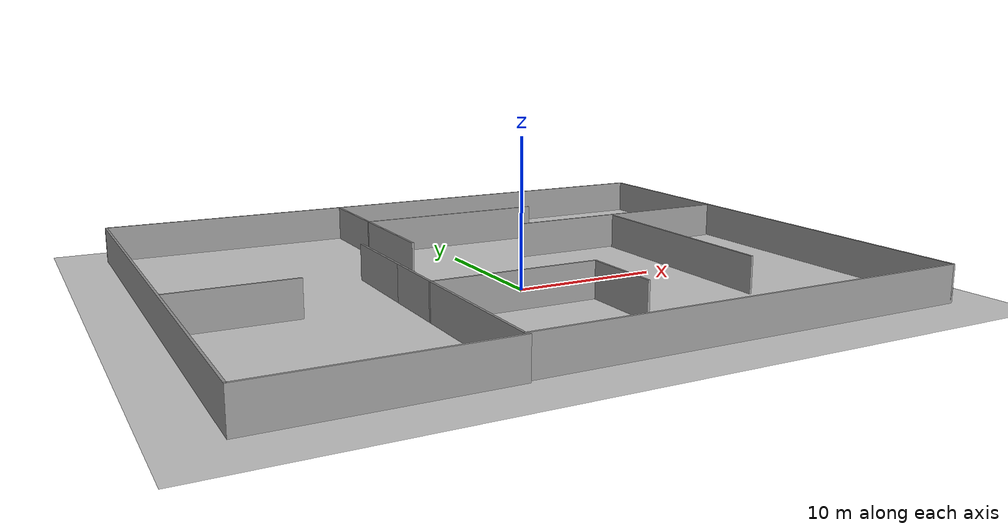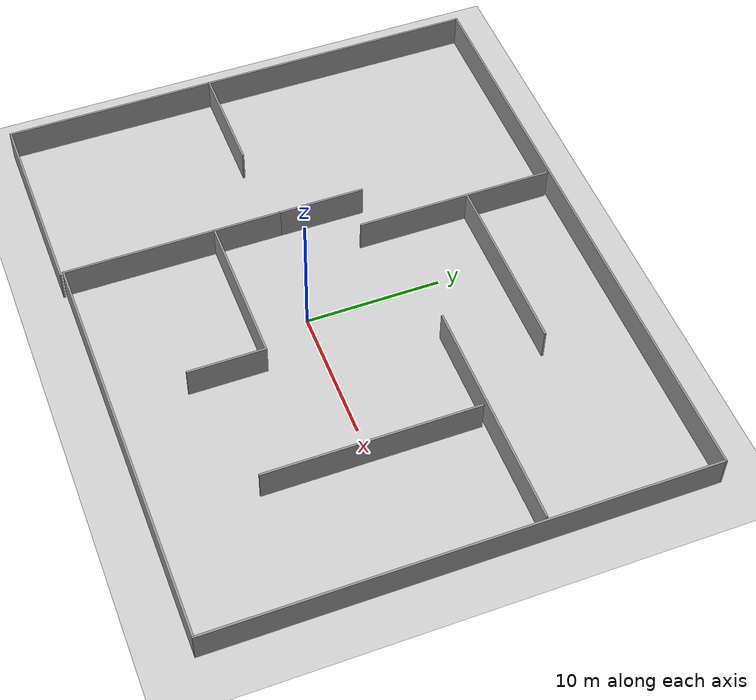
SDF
<sdf version="1.7">
 <world name="default">
  <light name="sun" type="directional">
   <pose>0 0 10 0 -0 0</pose>
   <diffuse>0.8 0.8 0.8 1</diffuse>
   <specular>0.2 0.2 0.2 1</specular>
   <attenuation>
    <range>1000</range>
    <constant>0.9</constant>
    <linear>0.01</linear>
    <quadratic>0.001</quadratic>
   </attenuation>
   <direction>-0.5 0.1 -0.9</direction>
   <spot><inner_angle>0</inner_angle><outer_angle>0</outer_angle><falloff>0</falloff></spot>
  </light>
  <model name="ground_plane">
   <static>1</static>
   <link name="link">
    <collision name="collision">
     <geometry><plane><normal>0 0 1</normal><size>100 100</size></plane></geometry>
     <surface>
      <contact><collide_bitmask>65535</collide_bitmask></contact>
      <friction><ode><mu>100</mu><mu2>50</mu2></ode></friction>
     </surface>
    </collision>
    <visual name="visual">
     <cast_shadows>0</cast_shadows>
     <geometry><plane><normal>0 0 1</normal><size>100 100</size></plane></geometry>
     <material>
      <script><uri>file://media/materials/scripts/gazebo.material</uri><name>Gazebo/Grey</name></script>
     </material>
    </visual>
   </link>
  </model>
  <gravity>0 0 -9.8</gravity>
  <magnetic_field>6e-06 2.3e-05 -4.2e-05</magnetic_field>
  <atmosphere type="adiabatic"/>
  <physics name="default_physics" default="0" type="ode">
   <max_step_size>0.001</max_step_size>
   <real_time_factor>1</real_time_factor>
   <real_time_update_rate>1000</real_time_update_rate>
  </physics>
  <scene><ambient>0.4 0.4 0.4 1</ambient><background>0.7 0.7 0.7 1</background><shadows>1</shadows></scene>
  <spherical_coordinates>
   <surface_model>EARTH_WGS84</surface_model>
   <latitude_deg>0</latitude_deg>
   <longitude_deg>0</longitude_deg>
   <elevation>0</elevation>
   <heading_deg>0</heading_deg>
  </spherical_coordinates>
  <model name="125">
   <pose>-0.314976 2.71608 0 0 -0 0</pose>
   <link name="Wall_0">
    <collision name="Wall_0_Collision">
     <geometry><box><size>6.5 0.15 2.5</size></box></geometry>
     <pose>0 0 1.25 0 -0 0</pose>
    </collision>
    <visual name="Wall_0_Visual">
     <pose>0 0 1.25 0 -0 0</pose>
     <geometry><box><size>6.5 0.15 2.5</size></box></geometry>
     <material>
      <script><uri>file://media/materials/scripts/gazebo.material</uri><name>Gazebo/Grey</name></script>
      <ambient>1 1 1 1</ambient>
     </material>
     <meta><layer>0</layer></meta>
    </visual>
    <pose>-7.925 1.35 0 0 -0 -1.5708</pose>
   </link>
   <link name="Wall_1">
    <collision name="Wall_1_Collision">
     <geometry><box><size>16.25 0.15 2.5</size></box></geometry>
     <pose>0 0 1.25 0 -0 0</pose>
    </collision>
    <visual name="Wall_1_Visual">
     <pose>0 0 1.25 0 -0 0</pose>
     <geometry><box><size>16.25 0.15 2.5</size></box></geometry>
     <material>
      <script><uri>file://media/materials/scripts/gazebo.material</uri><name>Gazebo/Grey</name></script>
      <ambient>1 1 1 1</ambient>
     </material>
     <meta><layer>0</layer></meta>
    </visual>
    <pose>-7.925 -9.875 0 0 -0 -1.5708</pose>
   </link>
   <link name="Wall_10">
    <collision name="Wall_10_Collision">
     <geometry><box><size>11.5 0.15 2.5</size></box></geometry>
     <pose>0 0 1.25 0 -0 0</pose>
    </collision>
    <visual name="Wall_10_Visual">
     <pose>0 0 1.25 0 -0 0</pose>
     <geometry><box><size>11.5 0.15 2.5</size></box></geometry>
     <material>
      <script><uri>file://media/materials/scripts/gazebo.material</uri><name>Gazebo/Grey</name></script>
      <ambient>1 1 1 1</ambient>
     </material>
     <meta><layer>0</layer></meta>
    </visual>
    <pose>-2.26113 -6.76143 0 0 -0 0</pose>
   </link>
   <link name="Wall_11">
    <collision name="Wall_11_Collision">
     <geometry><box><size>5.75 0.15 2.5</size></box></geometry>
     <pose>0 0 1.25 0 -0 0</pose>
    </collision>
    <visual name="Wall_11_Visual">
     <pose>0 0 1.25 0 -0 0</pose>
     <geometry><box><size>5.75 0.15 2.5</size></box></geometry>
     <material>
      <script><uri>file://media/materials/scripts/gazebo.material</uri><name>Gazebo/Grey</name></script>
      <ambient>1 1 1 1</ambient>
     </material>
     <meta><layer>0</layer></meta>
    </visual>
    <pose>3.41387 -9.56143 0 0 -0 -1.5708</pose>
   </link>
   <link name="Wall_13">
    <collision name="Wall_13_Collision">
     <geometry><box><size>14.75 0.15 2.5</size></box></geometry>
     <pose>0 0 1.25 0 -0 0</pose>
    </collision>
    <visual name="Wall_13_Visual">
     <pose>0 0 1.25 0 -0 0</pose>
     <geometry><box><size>14.75 0.15 2.5</size></box></geometry>
     <material>
      <script><uri>file://media/materials/scripts/gazebo.material</uri><name>Gazebo/Grey</name></script>
      <ambient>1 1 1 1</ambient>
     </material>
     <meta><layer>0</layer></meta>
    </visual>
    <pose>-4.74888 10.6111 0 0 -0 -1.5708</pose>
   </link>
   <link name="Wall_16">
    <collision name="Wall_16_Collision">
     <geometry><box><size>13.75 0.15 2.5</size></box></geometry>
     <pose>0 0 1.25 0 -0 0</pose>
    </collision>
    <visual name="Wall_16_Visual">
     <pose>0 0 1.25 0 -0 0</pose>
     <geometry><box><size>13.75 0.15 2.5</size></box></geometry>
     <material>
      <script><uri>file://media/materials/scripts/gazebo.material</uri><name>Gazebo/Grey</name></script>
      <ambient>1 1 1 1</ambient>
     </material>
     <meta><layer>0</layer></meta>
    </visual>
    <pose>2.05112 11.5483 0 0 -0 0</pose>
   </link>
   <link name="Wall_18">
    <collision name="Wall_18_Collision">
     <geometry><box><size>17.25 0.15 2.5</size></box></geometry>
     <pose>0 0 1.25 0 -0 0</pose>
    </collision>
    <visual name="Wall_18_Visual">
     <pose>0 0 1.25 0 -0 0</pose>
     <geometry><box><size>17.25 0.15 2.5</size></box></geometry>
     <material>
      <script><uri>file://media/materials/scripts/gazebo.material</uri><name>Gazebo/Grey</name></script>
      <ambient>1 1 1 1</ambient>
     </material>
     <meta><layer>0</layer></meta>
    </visual>
    <pose>13.59 5.55264 0 0 -0 0</pose>
   </link>
   <link name="Wall_2">
    <collision name="Wall_2_Collision">
     <geometry><box><size>30.5 0.15 2.5</size></box></geometry>
     <pose>0 0 1.25 0 -0 0</pose>
    </collision>
    <visual name="Wall_2_Visual">
     <pose>0 0 1.25 0 -0 0</pose>
     <geometry><box><size>30.5 0.15 2.5</size></box></geometry>
     <material>
      <script><uri>file://media/materials/scripts/gazebo.material</uri><name>Gazebo/Grey</name></script>
      <ambient>1 1 1 1</ambient>
     </material>
     <meta><layer>0</layer></meta>
    </visual>
    <pose>7.25 -17.925 0 0 -0 0</pose>
   </link>
   <link name="Wall_20">
    <collision name="Wall_20_Collision">
     <geometry><box><size>15.75 0.15 2.5</size></box></geometry>
     <pose>0 0 1.25 0 -0 0</pose>
    </collision>
    <visual name="Wall_20_Visual">
     <pose>0 0 1.25 0 -0 0</pose>
     <geometry><box><size>15.75 0.15 2.5</size></box></geometry>
     <material>
      <script><uri>file://media/materials/scripts/gazebo.material</uri><name>Gazebo/Grey</name></script>
      <ambient>1 1 1 1</ambient>
     </material>
     <meta><layer>0</layer></meta>
    </visual>
    <pose>12.8711 -2.61444 0 0 -0 -1.5708</pose>
   </link>
   <link name="Wall_3">
    <collision name="Wall_3_Collision">
     <geometry><box><size>36.25 0.15 2.5</size></box></geometry>
     <pose>0 0 1.25 0 -0 0</pose>
    </collision>
    <visual name="Wall_3_Visual">
     <pose>0 0 1.25 0 -0 0</pose>
     <geometry><box><size>36.25 0.15 2.5</size></box></geometry>
     <material>
      <script><uri>file://media/materials/scripts/gazebo.material</uri><name>Gazebo/Grey</name></script>
      <ambient>1 1 1 1</ambient>
     </material>
     <meta><layer>0</layer></meta>
    </visual>
    <pose>22.425 0.125 0 0 -0 1.5708</pose>
   </link>
   <link name="Wall_4">
    <collision name="Wall_4_Collision">
     <geometry><box><size>45 0.15 2.5</size></box></geometry>
     <pose>0 0 1.25 0 -0 0</pose>
    </collision>
    <visual name="Wall_4_Visual">
     <pose>0 0 1.25 0 -0 0</pose>
     <geometry><box><size>45 0.15 2.5</size></box></geometry>
     <material>
      <script><uri>file://media/materials/scripts/gazebo.material</uri><name>Gazebo/Grey</name></script>
      <ambient>1 1 1 1</ambient>
     </material>
     <meta><layer>0</layer></meta>
    </visual>
    <pose>0 18.175 0 0 -0 3.14159</pose>
   </link>
   <link name="Wall_5">
    <collision name="Wall_5_Collision">
     <geometry><box><size>36.5 0.15 2.5</size></box></geometry>
     <pose>0 0 1.25 0 -0 0</pose>
    </collision>
    <visual name="Wall_5_Visual">
     <pose>0 0 1.25 0 -0 0</pose>
     <geometry><box><size>36.5 0.15 2.5</size></box></geometry>
     <material>
      <script><uri>file://media/materials/scripts/gazebo.material</uri><name>Gazebo/Grey</name></script>
      <ambient>1 1 1 1</ambient>
     </material>
     <meta><layer>0</layer></meta>
    </visual>
    <pose>-22.425 0 0 0 -0 -1.5708</pose>
   </link>
   <link name="Wall_6">
    <collision name="Wall_6_Collision">
     <geometry><box><size>14.75 0.15 2.5</size></box></geometry>
     <pose>0 0 1.25 0 -0 0</pose>
    </collision>
    <visual name="Wall_6_Visual">
     <pose>0 0 1.25 0 -0 0</pose>
     <geometry><box><size>14.75 0.15 2.5</size></box></geometry>
     <material>
      <script><uri>file://media/materials/scripts/gazebo.material</uri><name>Gazebo/Grey</name></script>
      <ambient>1 1 1 1</ambient>
     </material>
     <meta><layer>0</layer></meta>
    </visual>
    <pose>-15.125 -18.175 0 0 -0 0</pose>
   </link>
   <link name="Wall_8">
    <collision name="Wall_8_Collision">
     <geometry><box><size>8.25 0.15 2.5</size></box></geometry>
     <pose>0 0 1.25 0 -0 0</pose>
    </collision>
    <visual name="Wall_8_Visual">
     <pose>0 0 1.25 0 -0 0</pose>
     <geometry><box><size>8.25 0.15 2.5</size></box></geometry>
     <material>
      <script><uri>file://media/materials/scripts/gazebo.material</uri><name>Gazebo/Grey</name></script>
      <ambient>1 1 1 1</ambient>
     </material>
     <meta><layer>0</layer></meta>
    </visual>
    <pose>-18.3566 -2.5054 0 0 -0 0</pose>
   </link>
   <static>1</static>
  </model>
 </world>
</sdf>
